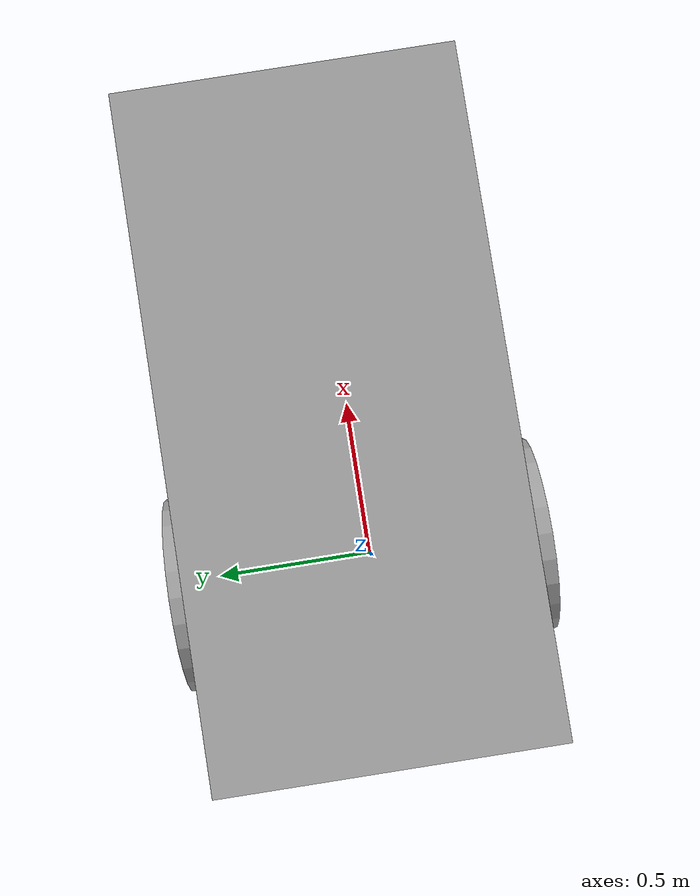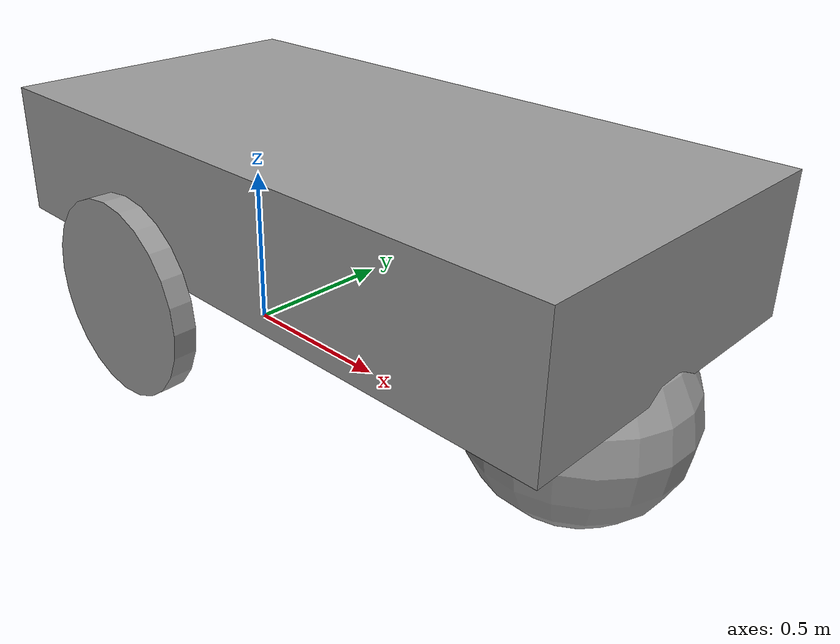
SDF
<?xml version='1.0'?>
<sdf version='1.7'>
  <model name='three_wheel_robot'>
    <link name='link_0'>
      <inertial>
        <mass>549.779</mass>
        <inertia>
          <ixx>80.1761</ixx>
          <ixy>0</ixy>
          <ixz>0</ixz>
          <iyy>80.1761</iyy>
          <iyz>0</iyz>
          <izz>68.7223</izz>
        </inertia>
        <pose>0 0 0 0 -0 0</pose>
      </inertial>
      <pose>-0.014811 -0.491404 0.244831 1.57301 -0 0</pose>
      <gravity>1</gravity>
      <self_collide>0</self_collide>
      <kinematic>0</kinematic>
      <enable_wind>0</enable_wind>
      <visual name='visual'>
        <pose>0 0 0 0 -0 0</pose>
        <geometry>
          <cylinder>
            <radius>0.3</radius>
            <length>0.07</length>
          </cylinder>
        </geometry>
        <material>
          <lighting>1</lighting>
          <script>
            <uri>file://media/materials/scripts/gazebo.material</uri>
            <name>Gazebo/Grey</name>
          </script>
          <shader type='pixel'>
            <normal_map>__default__</normal_map>
          </shader>
          <ambient>0.3 0.3 0.3 1</ambient>
          <diffuse>0.7 0.7 0.7 1</diffuse>
          <specular>0.01 0.01 0.01 1</specular>
          <emissive>0 0 0 1</emissive>
        </material>
        <transparency>0</transparency>
        <cast_shadows>1</cast_shadows>
      </visual>
      <collision name='collision'>
        <laser_retro>0</laser_retro>
        <max_contacts>10</max_contacts>
        <pose>0 0 0 0 -0 0</pose>
        <geometry>
          <cylinder>
            <radius>0.3</radius>
            <length>0.07</length>
          </cylinder>
        </geometry>
        <surface>
          <friction>
            <ode>
              <mu>1</mu>
              <mu2>1</mu2>
              <fdir1>0 0 0</fdir1>
              <slip1>0</slip1>
              <slip2>0</slip2>
            </ode>
            <torsional>
              <coefficient>1</coefficient>
              <patch_radius>0</patch_radius>
              <surface_radius>0</surface_radius>
              <use_patch_radius>1</use_patch_radius>
              <ode>
                <slip>0</slip>
              </ode>
            </torsional>
          </friction>
          <bounce>
            <restitution_coefficient>0</restitution_coefficient>
            <threshold>1e+06</threshold>
          </bounce>
          <contact>
            <collide_without_contact>0</collide_without_contact>
            <collide_without_contact_bitmask>1</collide_without_contact_bitmask>
            <collide_bitmask>1</collide_bitmask>
            <ode>
              <soft_cfm>0</soft_cfm>
              <soft_erp>0.2</soft_erp>
              <kp>1e+13</kp>
              <kd>1</kd>
              <max_vel>0.01</max_vel>
              <min_depth>0</min_depth>
            </ode>
            <bullet>
              <split_impulse>1</split_impulse>
              <split_impulse_penetration_threshold>-0.01</split_impulse_penetration_threshold>
              <soft_cfm>0</soft_cfm>
              <soft_erp>0.2</soft_erp>
              <kp>1e+13</kp>
              <kd>1</kd>
            </bullet>
          </contact>
        </surface>
      </collision>
    </link>
    <link name='link_0_0'>
      <inertial>
        <mass>1</mass>
        <inertia>
          <ixx>0.1</ixx>
          <ixy>0</ixy>
          <ixz>0</ixz>
          <iyy>0.1</iyy>
          <iyz>0</iyz>
          <izz>0.1</izz>
        </inertia>
        <pose>0 0 0 0 -0 0</pose>
      </inertial>
      <pose>1.18006 0.044421 0.198691 0.008132 0.001634 -0.198237</pose>
      <gravity>1</gravity>
      <self_collide>0</self_collide>
      <kinematic>0</kinematic>
      <enable_wind>0</enable_wind>
      <visual name='visual'>
        <pose>0 0 0 0 -0 0</pose>
        <geometry>
          <sphere>
            <radius>0.3</radius>
          </sphere>
        </geometry>
        <material>
          <lighting>1</lighting>
          <script>
            <uri>file://media/materials/scripts/gazebo.material</uri>
            <name>Gazebo/Grey</name>
          </script>
          <shader type='pixel'>
            <normal_map>__default__</normal_map>
          </shader>
          <ambient>0.3 0.3 0.3 1</ambient>
          <diffuse>0.7 0.7 0.7 1</diffuse>
          <specular>0.01 0.01 0.01 1</specular>
          <emissive>0 0 0 1</emissive>
        </material>
        <transparency>0</transparency>
        <cast_shadows>1</cast_shadows>
      </visual>
      <collision name='collision'>
        <laser_retro>0</laser_retro>
        <max_contacts>10</max_contacts>
        <pose>0 0 0 0 -0 0</pose>
        <geometry>
          <sphere>
            <radius>0.3</radius>
          </sphere>
        </geometry>
        <surface>
          <friction>
            <ode>
              <mu>1</mu>
              <mu2>1</mu2>
              <fdir1>0 0 0</fdir1>
              <slip1>0</slip1>
              <slip2>0</slip2>
            </ode>
            <torsional>
              <coefficient>1</coefficient>
              <patch_radius>0</patch_radius>
              <surface_radius>0</surface_radius>
              <use_patch_radius>1</use_patch_radius>
              <ode>
                <slip>0</slip>
              </ode>
            </torsional>
          </friction>
          <bounce>
            <restitution_coefficient>0</restitution_coefficient>
            <threshold>1e+06</threshold>
          </bounce>
          <contact>
            <collide_without_contact>0</collide_without_contact>
            <collide_without_contact_bitmask>1</collide_without_contact_bitmask>
            <collide_bitmask>1</collide_bitmask>
            <ode>
              <soft_cfm>0</soft_cfm>
              <soft_erp>0.2</soft_erp>
              <kp>1e+13</kp>
              <kd>1</kd>
              <max_vel>0.01</max_vel>
              <min_depth>0</min_depth>
            </ode>
            <bullet>
              <split_impulse>1</split_impulse>
              <split_impulse_penetration_threshold>-0.01</split_impulse_penetration_threshold>
              <soft_cfm>0</soft_cfm>
              <soft_erp>0.2</soft_erp>
              <kp>1e+13</kp>
              <kd>1</kd>
            </bullet>
          </contact>
        </surface>
      </collision>
    </link>
    <link name='link_0_clone'>
      <inertial>
        <mass>1</mass>
        <inertia>
          <ixx>0.145833</ixx>
          <ixy>0</ixy>
          <ixz>0</ixz>
          <iyy>0.145833</iyy>
          <iyz>0</iyz>
          <izz>0.125</izz>
        </inertia>
        <pose>0 0 0 -0.04 0 0</pose>
      </inertial>
      <pose>-0.031882 0.574622 0.244929 1.573 -0 0</pose>
      <gravity>1</gravity>
      <self_collide>0</self_collide>
      <kinematic>0</kinematic>
      <enable_wind>0</enable_wind>
      <visual name='visual'>
        <pose>0 0 0 0 -0 0</pose>
        <geometry>
          <cylinder>
            <radius>0.3</radius>
            <length>0.07</length>
          </cylinder>
        </geometry>
        <material>
          <lighting>1</lighting>
          <script>
            <uri>file://media/materials/scripts/gazebo.material</uri>
            <name>Gazebo/Grey</name>
          </script>
          <shader type='pixel'>
            <normal_map>__default__</normal_map>
          </shader>
          <ambient>0.3 0.3 0.3 1</ambient>
          <diffuse>0.7 0.7 0.7 1</diffuse>
          <specular>0.01 0.01 0.01 1</specular>
          <emissive>0 0 0 1</emissive>
        </material>
        <transparency>0</transparency>
        <cast_shadows>1</cast_shadows>
      </visual>
      <collision name='collision'>
        <laser_retro>0</laser_retro>
        <max_contacts>10</max_contacts>
        <pose>0 0 0 0 -0 0</pose>
        <geometry>
          <cylinder>
            <radius>0.3</radius>
            <length>0.07</length>
          </cylinder>
        </geometry>
        <surface>
          <friction>
            <ode>
              <mu>1</mu>
              <mu2>1</mu2>
              <fdir1>0 0 0</fdir1>
              <slip1>0</slip1>
              <slip2>0</slip2>
            </ode>
            <torsional>
              <coefficient>1</coefficient>
              <patch_radius>0</patch_radius>
              <surface_radius>0</surface_radius>
              <use_patch_radius>1</use_patch_radius>
              <ode>
                <slip>0</slip>
              </ode>
            </torsional>
          </friction>
          <bounce>
            <restitution_coefficient>0</restitution_coefficient>
            <threshold>1e+06</threshold>
          </bounce>
          <contact>
            <collide_without_contact>0</collide_without_contact>
            <collide_without_contact_bitmask>1</collide_without_contact_bitmask>
            <collide_bitmask>1</collide_bitmask>
            <ode>
              <soft_cfm>0</soft_cfm>
              <soft_erp>0.2</soft_erp>
              <kp>1e+13</kp>
              <kd>1</kd>
              <max_vel>0.01</max_vel>
              <min_depth>0</min_depth>
            </ode>
            <bullet>
              <split_impulse>1</split_impulse>
              <split_impulse_penetration_threshold>-0.01</split_impulse_penetration_threshold>
              <soft_cfm>0</soft_cfm>
              <soft_erp>0.2</soft_erp>
              <kp>1e+13</kp>
              <kd>1</kd>
            </bullet>
          </contact>
        </surface>
      </collision>
    </link>
    <link name='link_2'>
      <inertial>
        <mass>1090.22</mass>
        <inertia>
          <ixx>126.968</ixx>
          <ixy>0</ixy>
          <ixz>0</ixz>
          <iyy>415.38</iyy>
          <iyz>0</iyz>
          <izz>513.781</izz>
        </inertia>
        <pose>0 0 0 0 -0 0</pose>
      </inertial>
      <pose>0.416084 0.044638 0.544494 -0.000628 -0 0</pose>
      <gravity>1</gravity>
      <self_collide>0</self_collide>
      <kinematic>0</kinematic>
      <enable_wind>0</enable_wind>
      <visual name='visual'>
        <pose>0 0 0 0 -0 0</pose>
        <geometry>
          <box>
            <size>2 1 0.4</size>
          </box>
        </geometry>
        <material>
          <lighting>1</lighting>
          <script>
            <uri>file://media/materials/scripts/gazebo.material</uri>
            <name>Gazebo/Grey</name>
          </script>
          <shader type='pixel'>
            <normal_map>__default__</normal_map>
          </shader>
          <emissive>0 0 0 1</emissive>
          <ambient>0.3 0.3 0.3 1</ambient>
          <diffuse>0.7 0.7 0.7 1</diffuse>
          <specular>0.01 0.01 0.01 1</specular>
        </material>
        <transparency>0</transparency>
        <cast_shadows>1</cast_shadows>
      </visual>
      <collision name='collision'>
        <laser_retro>0</laser_retro>
        <max_contacts>10</max_contacts>
        <pose>0 0 0 0 -0 0</pose>
        <geometry>
          <box>
            <size>2 1 0.4</size>
          </box>
        </geometry>
        <surface>
          <friction>
            <ode>
              <mu>1</mu>
              <mu2>1</mu2>
              <fdir1>0 0 0</fdir1>
              <slip1>0</slip1>
              <slip2>0</slip2>
            </ode>
            <torsional>
              <coefficient>1</coefficient>
              <patch_radius>0</patch_radius>
              <surface_radius>0</surface_radius>
              <use_patch_radius>1</use_patch_radius>
              <ode>
                <slip>0</slip>
              </ode>
            </torsional>
          </friction>
          <bounce>
            <restitution_coefficient>0</restitution_coefficient>
            <threshold>1e+06</threshold>
          </bounce>
          <contact>
            <collide_without_contact>0</collide_without_contact>
            <collide_without_contact_bitmask>1</collide_without_contact_bitmask>
            <collide_bitmask>1</collide_bitmask>
            <ode>
              <soft_cfm>0</soft_cfm>
              <soft_erp>0.2</soft_erp>
              <kp>1e+13</kp>
              <kd>1</kd>
              <max_vel>0.01</max_vel>
              <min_depth>0</min_depth>
            </ode>
            <bullet>
              <split_impulse>1</split_impulse>
              <split_impulse_penetration_threshold>-0.01</split_impulse_penetration_threshold>
              <soft_cfm>0</soft_cfm>
              <soft_erp>0.2</soft_erp>
              <kp>1e+13</kp>
              <kd>1</kd>
            </bullet>
          </contact>
        </surface>
      </collision>
    </link>
    <joint name='link_2_JOINT_0' type='ball'>
      <parent>link_2</parent>
      <child>link_0_0</child>
      <pose>0 0 0 0.01 -0 0</pose>
      <physics>
        <ode>
          <limit>
            <cfm>0</cfm>
            <erp>0.2</erp>
          </limit>
          <suspension>
            <cfm>0</cfm>
            <erp>0.2</erp>
          </suspension>
        </ode>
      </physics>
    </joint>
    <joint name='link_2_JOINT_1' type='revolute'>
      <parent>link_2</parent>
      <child>link_0_clone</child>
      <pose>0 0 0 0 0 -0.05</pose>
      <axis>
        <xyz>0 0 1</xyz>
        <limit>
          <lower>-1.79769e+308</lower>
          <upper>1.79769e+308</upper>
          <effort>-1</effort>
          <velocity>-1</velocity>
        </limit>
        <dynamics>
          <spring_reference>0</spring_reference>
          <spring_stiffness>0</spring_stiffness>
          <damping>0</damping>
          <friction>0</friction>
        </dynamics>
      </axis>
      <physics>
        <ode>
          <limit>
            <cfm>0</cfm>
            <erp>0.2</erp>
          </limit>
          <suspension>
            <cfm>0</cfm>
            <erp>0.2</erp>
          </suspension>
        </ode>
      </physics>
    </joint>
    <joint name='link_2_JOINT_2' type='revolute'>
      <parent>link_2</parent>
      <child>link_0</child>
      <pose>0 0 0 0 -0 0</pose>
      <axis>
        <xyz>0 0 1</xyz>
        <limit>
          <lower>-1.79769e+308</lower>
          <upper>1.79769e+308</upper>
          <effort>-1</effort>
          <velocity>-1</velocity>
        </limit>
        <dynamics>
          <spring_reference>0</spring_reference>
          <spring_stiffness>0</spring_stiffness>
          <damping>0</damping>
          <friction>0</friction>
        </dynamics>
      </axis>
      <physics>
        <ode>
          <limit>
            <cfm>0</cfm>
            <erp>0.2</erp>
          </limit>
          <suspension>
            <cfm>0</cfm>
            <erp>0.2</erp>
          </suspension>
        </ode>
      </physics>
    </joint>
    <static>0</static>
    <allow_auto_disable>1</allow_auto_disable>
  </model>
</sdf>
